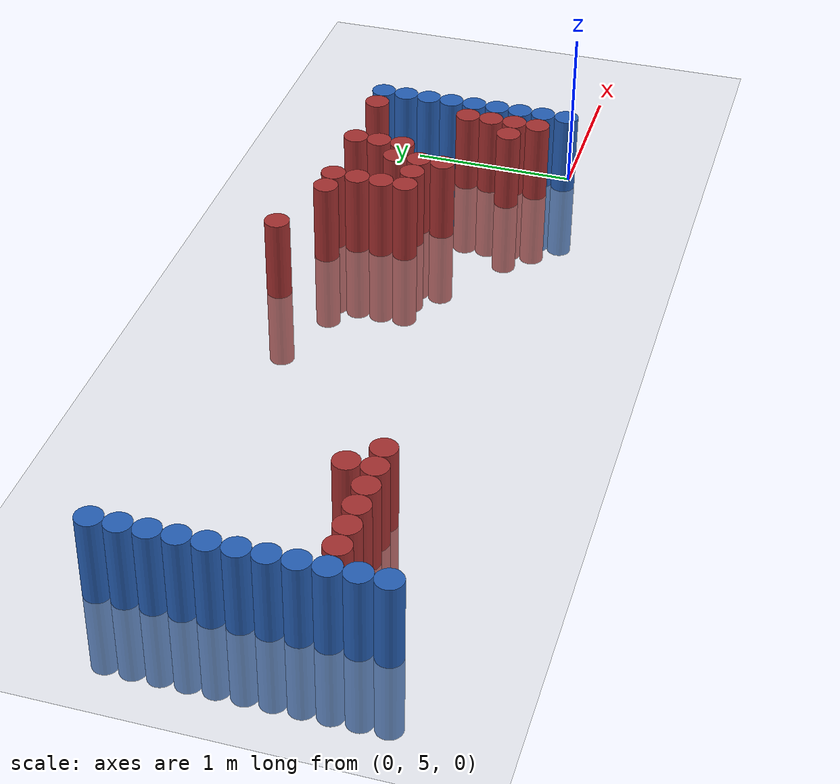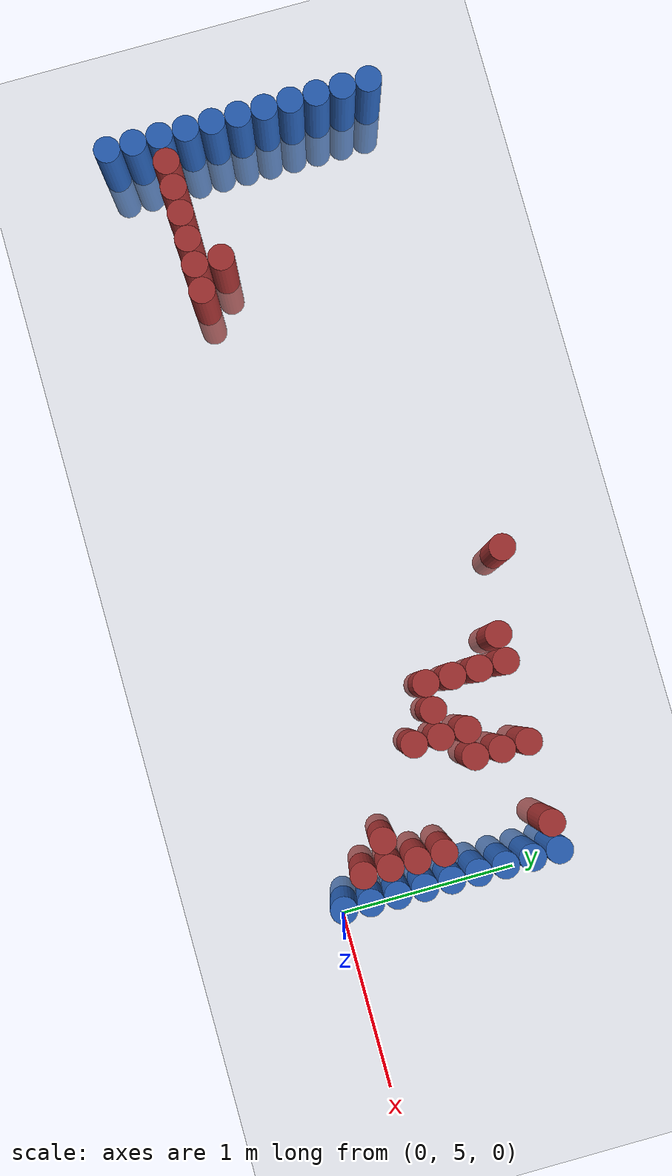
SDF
<sdf version="1.6">
 <world name="default">
  <model name="ground_plane">
   <static>1</static>
   <link name="link">
    <collision name="collision">
     <geometry><plane><normal>0 0 1</normal><size>100 100</size></plane></geometry>
     <surface><friction><ode><mu>100</mu><mu2>50</mu2></ode></friction></surface>
    </collision>
    <visual name="visual">
     <cast_shadows>0</cast_shadows>
     <geometry><plane><normal>0 0 1</normal><size>100 100</size></plane></geometry>
     <material>
      <script><uri>file://media/materials/scripts/gazebo.material</uri><name>Gazebo/Grey</name></script>
     </material>
    </visual>
   </link>
  </model>
  <model name="unit_cylinder_93">
   <static>1</static>
   <pose>-4.425000 4.875000 0.000000 0.000000 0.000000 0.000000</pose>
   <link name="link">
    <inertial>
     <mass>1</mass>
     <inertia><ixx>0.145833</ixx><ixy>0</ixy><ixz>0</ixz><iyy>0.145833</iyy><iyz>0</iyz><izz>0.125</izz></inertia>
    </inertial>
    <collision name="collision">
     <geometry><cylinder><radius>0.075000</radius><length>1</length></cylinder></geometry>
    </collision>
    <visual name="visual">
     <geometry><cylinder><radius>0.075000</radius><length>1</length></cylinder></geometry>
     <material>
      <ambient>0.152000 0.379000 0.720000 1</ambient>
      <diffuse>0.152000 0.379000 0.720000 1</diffuse>
     </material>
     <material>
      <script><name>Gazebo/Grey</name><uri>file://media/materials/scripts/gazebo.material</uri></script>
     </material>
    </visual>
   </link>
  </model>
  <model name="unit_cylinder_94">
   <static>1</static>
   <pose>-0.075000 5.025000 0.000000 0.000000 0.000000 0.000000</pose>
   <link name="link">
    <inertial>
     <mass>1</mass>
     <inertia><ixx>0.145833</ixx><ixy>0</ixy><ixz>0</ixz><iyy>0.145833</iyy><iyz>0</iyz><izz>0.125</izz></inertia>
    </inertial>
    <collision name="collision">
     <geometry><cylinder><radius>0.075000</radius><length>1</length></cylinder></geometry>
    </collision>
    <visual name="visual">
     <geometry><cylinder><radius>0.075000</radius><length>1</length></cylinder></geometry>
     <material>
      <ambient>0.152000 0.379000 0.720000 1</ambient>
      <diffuse>0.152000 0.379000 0.720000 1</diffuse>
     </material>
     <material>
      <script><name>Gazebo/Grey</name><uri>file://media/materials/scripts/gazebo.material</uri></script>
     </material>
    </visual>
   </link>
  </model>
  <model name="unit_cylinder_95">
   <static>1</static>
   <pose>-4.425000 5.025000 0.000000 0.000000 0.000000 0.000000</pose>
   <link name="link">
    <inertial>
     <mass>1</mass>
     <inertia><ixx>0.145833</ixx><ixy>0</ixy><ixz>0</ixz><iyy>0.145833</iyy><iyz>0</iyz><izz>0.125</izz></inertia>
    </inertial>
    <collision name="collision">
     <geometry><cylinder><radius>0.075000</radius><length>1</length></cylinder></geometry>
    </collision>
    <visual name="visual">
     <geometry><cylinder><radius>0.075000</radius><length>1</length></cylinder></geometry>
     <material>
      <ambient>0.152000 0.379000 0.720000 1</ambient>
      <diffuse>0.152000 0.379000 0.720000 1</diffuse>
     </material>
     <material>
      <script><name>Gazebo/Grey</name><uri>file://media/materials/scripts/gazebo.material</uri></script>
     </material>
    </visual>
   </link>
  </model>
  <model name="unit_cylinder_96">
   <static>1</static>
   <pose>-4.425000 5.175000 0.000000 0.000000 0.000000 0.000000</pose>
   <link name="link">
    <inertial>
     <mass>1</mass>
     <inertia><ixx>0.145833</ixx><ixy>0</ixy><ixz>0</ixz><iyy>0.145833</iyy><iyz>0</iyz><izz>0.125</izz></inertia>
    </inertial>
    <collision name="collision">
     <geometry><cylinder><radius>0.075000</radius><length>1</length></cylinder></geometry>
    </collision>
    <visual name="visual">
     <geometry><cylinder><radius>0.075000</radius><length>1</length></cylinder></geometry>
     <material>
      <ambient>0.152000 0.379000 0.720000 1</ambient>
      <diffuse>0.152000 0.379000 0.720000 1</diffuse>
     </material>
     <material>
      <script><name>Gazebo/Grey</name><uri>file://media/materials/scripts/gazebo.material</uri></script>
     </material>
    </visual>
   </link>
  </model>
  <model name="unit_cylinder_97">
   <static>1</static>
   <pose>-4.425000 5.325000 0.000000 0.000000 0.000000 0.000000</pose>
   <link name="link">
    <inertial>
     <mass>1</mass>
     <inertia><ixx>0.145833</ixx><ixy>0</ixy><ixz>0</ixz><iyy>0.145833</iyy><iyz>0</iyz><izz>0.125</izz></inertia>
    </inertial>
    <collision name="collision">
     <geometry><cylinder><radius>0.075000</radius><length>1</length></cylinder></geometry>
    </collision>
    <visual name="visual">
     <geometry><cylinder><radius>0.075000</radius><length>1</length></cylinder></geometry>
     <material>
      <ambient>0.152000 0.379000 0.720000 1</ambient>
      <diffuse>0.152000 0.379000 0.720000 1</diffuse>
     </material>
     <material>
      <script><name>Gazebo/Grey</name><uri>file://media/materials/scripts/gazebo.material</uri></script>
     </material>
    </visual>
   </link>
  </model>
  <model name="unit_cylinder_98">
   <static>1</static>
   <pose>-4.425000 5.475000 0.000000 0.000000 0.000000 0.000000</pose>
   <link name="link">
    <inertial>
     <mass>1</mass>
     <inertia><ixx>0.145833</ixx><ixy>0</ixy><ixz>0</ixz><iyy>0.145833</iyy><iyz>0</iyz><izz>0.125</izz></inertia>
    </inertial>
    <collision name="collision">
     <geometry><cylinder><radius>0.075000</radius><length>1</length></cylinder></geometry>
    </collision>
    <visual name="visual">
     <geometry><cylinder><radius>0.075000</radius><length>1</length></cylinder></geometry>
     <material>
      <ambient>0.152000 0.379000 0.720000 1</ambient>
      <diffuse>0.152000 0.379000 0.720000 1</diffuse>
     </material>
     <material>
      <script><name>Gazebo/Grey</name><uri>file://media/materials/scripts/gazebo.material</uri></script>
     </material>
    </visual>
   </link>
  </model>
  <model name="unit_cylinder_99">
   <static>1</static>
   <pose>-4.425000 5.625000 0.000000 0.000000 0.000000 0.000000</pose>
   <link name="link">
    <inertial>
     <mass>1</mass>
     <inertia><ixx>0.145833</ixx><ixy>0</ixy><ixz>0</ixz><iyy>0.145833</iyy><iyz>0</iyz><izz>0.125</izz></inertia>
    </inertial>
    <collision name="collision">
     <geometry><cylinder><radius>0.075000</radius><length>1</length></cylinder></geometry>
    </collision>
    <visual name="visual">
     <geometry><cylinder><radius>0.075000</radius><length>1</length></cylinder></geometry>
     <material>
      <ambient>0.152000 0.379000 0.720000 1</ambient>
      <diffuse>0.152000 0.379000 0.720000 1</diffuse>
     </material>
     <material>
      <script><name>Gazebo/Grey</name><uri>file://media/materials/scripts/gazebo.material</uri></script>
     </material>
    </visual>
   </link>
  </model>
  <model name="unit_cylinder_100">
   <static>1</static>
   <pose>-4.425000 5.775000 0.000000 0.000000 0.000000 0.000000</pose>
   <link name="link">
    <inertial>
     <mass>1</mass>
     <inertia><ixx>0.145833</ixx><ixy>0</ixy><ixz>0</ixz><iyy>0.145833</iyy><iyz>0</iyz><izz>0.125</izz></inertia>
    </inertial>
    <collision name="collision">
     <geometry><cylinder><radius>0.075000</radius><length>1</length></cylinder></geometry>
    </collision>
    <visual name="visual">
     <geometry><cylinder><radius>0.075000</radius><length>1</length></cylinder></geometry>
     <material>
      <ambient>0.152000 0.379000 0.720000 1</ambient>
      <diffuse>0.152000 0.379000 0.720000 1</diffuse>
     </material>
     <material>
      <script><name>Gazebo/Grey</name><uri>file://media/materials/scripts/gazebo.material</uri></script>
     </material>
    </visual>
   </link>
  </model>
  <model name="unit_cylinder_101">
   <static>1</static>
   <pose>-4.425000 5.925000 0.000000 0.000000 0.000000 0.000000</pose>
   <link name="link">
    <inertial>
     <mass>1</mass>
     <inertia><ixx>0.145833</ixx><ixy>0</ixy><ixz>0</ixz><iyy>0.145833</iyy><iyz>0</iyz><izz>0.125</izz></inertia>
    </inertial>
    <collision name="collision">
     <geometry><cylinder><radius>0.075000</radius><length>1</length></cylinder></geometry>
    </collision>
    <visual name="visual">
     <geometry><cylinder><radius>0.075000</radius><length>1</length></cylinder></geometry>
     <material>
      <ambient>0.152000 0.379000 0.720000 1</ambient>
      <diffuse>0.152000 0.379000 0.720000 1</diffuse>
     </material>
     <material>
      <script><name>Gazebo/Grey</name><uri>file://media/materials/scripts/gazebo.material</uri></script>
     </material>
    </visual>
   </link>
  </model>
  <model name="unit_cylinder_102">
   <static>1</static>
   <pose>-4.425000 6.075000 0.000000 0.000000 0.000000 0.000000</pose>
   <link name="link">
    <inertial>
     <mass>1</mass>
     <inertia><ixx>0.145833</ixx><ixy>0</ixy><ixz>0</ixz><iyy>0.145833</iyy><iyz>0</iyz><izz>0.125</izz></inertia>
    </inertial>
    <collision name="collision">
     <geometry><cylinder><radius>0.075000</radius><length>1</length></cylinder></geometry>
    </collision>
    <visual name="visual">
     <geometry><cylinder><radius>0.075000</radius><length>1</length></cylinder></geometry>
     <material>
      <ambient>0.152000 0.379000 0.720000 1</ambient>
      <diffuse>0.152000 0.379000 0.720000 1</diffuse>
     </material>
     <material>
      <script><name>Gazebo/Grey</name><uri>file://media/materials/scripts/gazebo.material</uri></script>
     </material>
    </visual>
   </link>
  </model>
  <model name="unit_cylinder_103">
   <static>1</static>
   <pose>-4.425000 6.225000 0.000000 0.000000 0.000000 0.000000</pose>
   <link name="link">
    <inertial>
     <mass>1</mass>
     <inertia><ixx>0.145833</ixx><ixy>0</ixy><ixz>0</ixz><iyy>0.145833</iyy><iyz>0</iyz><izz>0.125</izz></inertia>
    </inertial>
    <collision name="collision">
     <geometry><cylinder><radius>0.075000</radius><length>1</length></cylinder></geometry>
    </collision>
    <visual name="visual">
     <geometry><cylinder><radius>0.075000</radius><length>1</length></cylinder></geometry>
     <material>
      <ambient>0.152000 0.379000 0.720000 1</ambient>
      <diffuse>0.152000 0.379000 0.720000 1</diffuse>
     </material>
     <material>
      <script><name>Gazebo/Grey</name><uri>file://media/materials/scripts/gazebo.material</uri></script>
     </material>
    </visual>
   </link>
  </model>
  <model name="unit_cylinder_104">
   <static>1</static>
   <pose>-4.425000 6.375000 0.000000 0.000000 0.000000 0.000000</pose>
   <link name="link">
    <inertial>
     <mass>1</mass>
     <inertia><ixx>0.145833</ixx><ixy>0</ixy><ixz>0</ixz><iyy>0.145833</iyy><iyz>0</iyz><izz>0.125</izz></inertia>
    </inertial>
    <collision name="collision">
     <geometry><cylinder><radius>0.075000</radius><length>1</length></cylinder></geometry>
    </collision>
    <visual name="visual">
     <geometry><cylinder><radius>0.075000</radius><length>1</length></cylinder></geometry>
     <material>
      <ambient>0.152000 0.379000 0.720000 1</ambient>
      <diffuse>0.152000 0.379000 0.720000 1</diffuse>
     </material>
     <material>
      <script><name>Gazebo/Grey</name><uri>file://media/materials/scripts/gazebo.material</uri></script>
     </material>
    </visual>
   </link>
  </model>
  <model name="unit_cylinder_126">
   <static>1</static>
   <pose>-4.275000 5.175000 0.000000 0.000000 0.000000 0.000000</pose>
   <link name="link">
    <inertial>
     <mass>1</mass>
     <inertia><ixx>0.145833</ixx><ixy>0</ixy><ixz>0</ixz><iyy>0.145833</iyy><iyz>0</iyz><izz>0.125</izz></inertia>
    </inertial>
    <collision name="collision">
     <geometry><cylinder><radius>0.075000</radius><length>1</length></cylinder></geometry>
    </collision>
    <visual name="visual">
     <geometry><cylinder><radius>0.075000</radius><length>1</length></cylinder></geometry>
     <material>
      <ambient>0.648000 0.192000 0.192000 1</ambient>
      <diffuse>0.648000 0.192000 0.192000 1</diffuse>
     </material>
     <material>
      <script><name>Gazebo/Grey</name><uri>file://media/materials/scripts/gazebo.material</uri></script>
     </material>
    </visual>
   </link>
  </model>
  <model name="unit_cylinder_131">
   <static>1</static>
   <pose>-4.125000 5.175000 0.000000 0.000000 0.000000 0.000000</pose>
   <link name="link">
    <inertial>
     <mass>1</mass>
     <inertia><ixx>0.145833</ixx><ixy>0</ixy><ixz>0</ixz><iyy>0.145833</iyy><iyz>0</iyz><izz>0.125</izz></inertia>
    </inertial>
    <collision name="collision">
     <geometry><cylinder><radius>0.075000</radius><length>1</length></cylinder></geometry>
    </collision>
    <visual name="visual">
     <geometry><cylinder><radius>0.075000</radius><length>1</length></cylinder></geometry>
     <material>
      <ambient>0.648000 0.192000 0.192000 1</ambient>
      <diffuse>0.648000 0.192000 0.192000 1</diffuse>
     </material>
     <material>
      <script><name>Gazebo/Grey</name><uri>file://media/materials/scripts/gazebo.material</uri></script>
     </material>
    </visual>
   </link>
  </model>
  <model name="unit_cylinder_136">
   <static>1</static>
   <pose>-3.975000 5.175000 0.000000 0.000000 0.000000 0.000000</pose>
   <link name="link">
    <inertial>
     <mass>1</mass>
     <inertia><ixx>0.145833</ixx><ixy>0</ixy><ixz>0</ixz><iyy>0.145833</iyy><iyz>0</iyz><izz>0.125</izz></inertia>
    </inertial>
    <collision name="collision">
     <geometry><cylinder><radius>0.075000</radius><length>1</length></cylinder></geometry>
    </collision>
    <visual name="visual">
     <geometry><cylinder><radius>0.075000</radius><length>1</length></cylinder></geometry>
     <material>
      <ambient>0.648000 0.192000 0.192000 1</ambient>
      <diffuse>0.648000 0.192000 0.192000 1</diffuse>
     </material>
     <material>
      <script><name>Gazebo/Grey</name><uri>file://media/materials/scripts/gazebo.material</uri></script>
     </material>
    </visual>
   </link>
  </model>
  <model name="unit_cylinder_139">
   <static>1</static>
   <pose>-3.825000 5.175000 0.000000 0.000000 0.000000 0.000000</pose>
   <link name="link">
    <inertial>
     <mass>1</mass>
     <inertia><ixx>0.145833</ixx><ixy>0</ixy><ixz>0</ixz><iyy>0.145833</iyy><iyz>0</iyz><izz>0.125</izz></inertia>
    </inertial>
    <collision name="collision">
     <geometry><cylinder><radius>0.075000</radius><length>1</length></cylinder></geometry>
    </collision>
    <visual name="visual">
     <geometry><cylinder><radius>0.075000</radius><length>1</length></cylinder></geometry>
     <material>
      <ambient>0.648000 0.192000 0.192000 1</ambient>
      <diffuse>0.648000 0.192000 0.192000 1</diffuse>
     </material>
     <material>
      <script><name>Gazebo/Grey</name><uri>file://media/materials/scripts/gazebo.material</uri></script>
     </material>
    </visual>
   </link>
  </model>
  <model name="unit_cylinder_140">
   <static>1</static>
   <pose>-3.675000 5.175000 0.000000 0.000000 0.000000 0.000000</pose>
   <link name="link">
    <inertial>
     <mass>1</mass>
     <inertia><ixx>0.145833</ixx><ixy>0</ixy><ixz>0</ixz><iyy>0.145833</iyy><iyz>0</iyz><izz>0.125</izz></inertia>
    </inertial>
    <collision name="collision">
     <geometry><cylinder><radius>0.075000</radius><length>1</length></cylinder></geometry>
    </collision>
    <visual name="visual">
     <geometry><cylinder><radius>0.075000</radius><length>1</length></cylinder></geometry>
     <material>
      <ambient>0.648000 0.192000 0.192000 1</ambient>
      <diffuse>0.648000 0.192000 0.192000 1</diffuse>
     </material>
     <material>
      <script><name>Gazebo/Grey</name><uri>file://media/materials/scripts/gazebo.material</uri></script>
     </material>
    </visual>
   </link>
  </model>
  <model name="unit_cylinder_141">
   <static>1</static>
   <pose>-3.675000 5.325000 0.000000 0.000000 0.000000 0.000000</pose>
   <link name="link">
    <inertial>
     <mass>1</mass>
     <inertia><ixx>0.145833</ixx><ixy>0</ixy><ixz>0</ixz><iyy>0.145833</iyy><iyz>0</iyz><izz>0.125</izz></inertia>
    </inertial>
    <collision name="collision">
     <geometry><cylinder><radius>0.075000</radius><length>1</length></cylinder></geometry>
    </collision>
    <visual name="visual">
     <geometry><cylinder><radius>0.075000</radius><length>1</length></cylinder></geometry>
     <material>
      <ambient>0.648000 0.192000 0.192000 1</ambient>
      <diffuse>0.648000 0.192000 0.192000 1</diffuse>
     </material>
     <material>
      <script><name>Gazebo/Grey</name><uri>file://media/materials/scripts/gazebo.material</uri></script>
     </material>
    </visual>
   </link>
  </model>
  <model name="unit_cylinder_142">
   <static>1</static>
   <pose>-3.525000 5.175000 0.000000 0.000000 0.000000 0.000000</pose>
   <link name="link">
    <inertial>
     <mass>1</mass>
     <inertia><ixx>0.145833</ixx><ixy>0</ixy><ixz>0</ixz><iyy>0.145833</iyy><iyz>0</iyz><izz>0.125</izz></inertia>
    </inertial>
    <collision name="collision">
     <geometry><cylinder><radius>0.075000</radius><length>1</length></cylinder></geometry>
    </collision>
    <visual name="visual">
     <geometry><cylinder><radius>0.075000</radius><length>1</length></cylinder></geometry>
     <material>
      <ambient>0.648000 0.192000 0.192000 1</ambient>
      <diffuse>0.648000 0.192000 0.192000 1</diffuse>
     </material>
     <material>
      <script><name>Gazebo/Grey</name><uri>file://media/materials/scripts/gazebo.material</uri></script>
     </material>
    </visual>
   </link>
  </model>
  <model name="unit_cylinder_179">
   <static>1</static>
   <pose>-1.725000 6.375000 0.000000 0.000000 0.000000 0.000000</pose>
   <link name="link">
    <inertial>
     <mass>1</mass>
     <inertia><ixx>0.145833</ixx><ixy>0</ixy><ixz>0</ixz><iyy>0.145833</iyy><iyz>0</iyz><izz>0.125</izz></inertia>
    </inertial>
    <collision name="collision">
     <geometry><cylinder><radius>0.075000</radius><length>1</length></cylinder></geometry>
    </collision>
    <visual name="visual">
     <geometry><cylinder><radius>0.075000</radius><length>1</length></cylinder></geometry>
     <material>
      <ambient>0.648000 0.192000 0.192000 1</ambient>
      <diffuse>0.648000 0.192000 0.192000 1</diffuse>
     </material>
     <material>
      <script><name>Gazebo/Grey</name><uri>file://media/materials/scripts/gazebo.material</uri></script>
     </material>
    </visual>
   </link>
  </model>
  <model name="unit_cylinder_195">
   <static>1</static>
   <pose>-1.275000 6.225000 0.000000 0.000000 0.000000 0.000000</pose>
   <link name="link">
    <inertial>
     <mass>1</mass>
     <inertia><ixx>0.145833</ixx><ixy>0</ixy><ixz>0</ixz><iyy>0.145833</iyy><iyz>0</iyz><izz>0.125</izz></inertia>
    </inertial>
    <collision name="collision">
     <geometry><cylinder><radius>0.075000</radius><length>1</length></cylinder></geometry>
    </collision>
    <visual name="visual">
     <geometry><cylinder><radius>0.075000</radius><length>1</length></cylinder></geometry>
     <material>
      <ambient>0.648000 0.192000 0.192000 1</ambient>
      <diffuse>0.648000 0.192000 0.192000 1</diffuse>
     </material>
     <material>
      <script><name>Gazebo/Grey</name><uri>file://media/materials/scripts/gazebo.material</uri></script>
     </material>
    </visual>
   </link>
  </model>
  <model name="unit_cylinder_204">
   <static>1</static>
   <pose>-1.125000 5.775000 0.000000 0.000000 0.000000 0.000000</pose>
   <link name="link">
    <inertial>
     <mass>1</mass>
     <inertia><ixx>0.145833</ixx><ixy>0</ixy><ixz>0</ixz><iyy>0.145833</iyy><iyz>0</iyz><izz>0.125</izz></inertia>
    </inertial>
    <collision name="collision">
     <geometry><cylinder><radius>0.075000</radius><length>1</length></cylinder></geometry>
    </collision>
    <visual name="visual">
     <geometry><cylinder><radius>0.075000</radius><length>1</length></cylinder></geometry>
     <material>
      <ambient>0.648000 0.192000 0.192000 1</ambient>
      <diffuse>0.648000 0.192000 0.192000 1</diffuse>
     </material>
     <material>
      <script><name>Gazebo/Grey</name><uri>file://media/materials/scripts/gazebo.material</uri></script>
     </material>
    </visual>
   </link>
  </model>
  <model name="unit_cylinder_205">
   <static>1</static>
   <pose>-1.125000 5.925000 0.000000 0.000000 0.000000 0.000000</pose>
   <link name="link">
    <inertial>
     <mass>1</mass>
     <inertia><ixx>0.145833</ixx><ixy>0</ixy><ixz>0</ixz><iyy>0.145833</iyy><iyz>0</iyz><izz>0.125</izz></inertia>
    </inertial>
    <collision name="collision">
     <geometry><cylinder><radius>0.075000</radius><length>1</length></cylinder></geometry>
    </collision>
    <visual name="visual">
     <geometry><cylinder><radius>0.075000</radius><length>1</length></cylinder></geometry>
     <material>
      <ambient>0.648000 0.192000 0.192000 1</ambient>
      <diffuse>0.648000 0.192000 0.192000 1</diffuse>
     </material>
     <material>
      <script><name>Gazebo/Grey</name><uri>file://media/materials/scripts/gazebo.material</uri></script>
     </material>
    </visual>
   </link>
  </model>
  <model name="unit_cylinder_206">
   <static>1</static>
   <pose>-1.125000 6.075000 0.000000 0.000000 0.000000 0.000000</pose>
   <link name="link">
    <inertial>
     <mass>1</mass>
     <inertia><ixx>0.145833</ixx><ixy>0</ixy><ixz>0</ixz><iyy>0.145833</iyy><iyz>0</iyz><izz>0.125</izz></inertia>
    </inertial>
    <collision name="collision">
     <geometry><cylinder><radius>0.075000</radius><length>1</length></cylinder></geometry>
    </collision>
    <visual name="visual">
     <geometry><cylinder><radius>0.075000</radius><length>1</length></cylinder></geometry>
     <material>
      <ambient>0.648000 0.192000 0.192000 1</ambient>
      <diffuse>0.648000 0.192000 0.192000 1</diffuse>
     </material>
     <material>
      <script><name>Gazebo/Grey</name><uri>file://media/materials/scripts/gazebo.material</uri></script>
     </material>
    </visual>
   </link>
  </model>
  <model name="unit_cylinder_207">
   <static>1</static>
   <pose>-1.125000 6.225000 0.000000 0.000000 0.000000 0.000000</pose>
   <link name="link">
    <inertial>
     <mass>1</mass>
     <inertia><ixx>0.145833</ixx><ixy>0</ixy><ixz>0</ixz><iyy>0.145833</iyy><iyz>0</iyz><izz>0.125</izz></inertia>
    </inertial>
    <collision name="collision">
     <geometry><cylinder><radius>0.075000</radius><length>1</length></cylinder></geometry>
    </collision>
    <visual name="visual">
     <geometry><cylinder><radius>0.075000</radius><length>1</length></cylinder></geometry>
     <material>
      <ambient>0.648000 0.192000 0.192000 1</ambient>
      <diffuse>0.648000 0.192000 0.192000 1</diffuse>
     </material>
     <material>
      <script><name>Gazebo/Grey</name><uri>file://media/materials/scripts/gazebo.material</uri></script>
     </material>
    </visual>
   </link>
  </model>
  <model name="unit_cylinder_214">
   <static>1</static>
   <pose>-0.975000 5.775000 0.000000 0.000000 0.000000 0.000000</pose>
   <link name="link">
    <inertial>
     <mass>1</mass>
     <inertia><ixx>0.145833</ixx><ixy>0</ixy><ixz>0</ixz><iyy>0.145833</iyy><iyz>0</iyz><izz>0.125</izz></inertia>
    </inertial>
    <collision name="collision">
     <geometry><cylinder><radius>0.075000</radius><length>1</length></cylinder></geometry>
    </collision>
    <visual name="visual">
     <geometry><cylinder><radius>0.075000</radius><length>1</length></cylinder></geometry>
     <material>
      <ambient>0.648000 0.192000 0.192000 1</ambient>
      <diffuse>0.648000 0.192000 0.192000 1</diffuse>
     </material>
     <material>
      <script><name>Gazebo/Grey</name><uri>file://media/materials/scripts/gazebo.material</uri></script>
     </material>
    </visual>
   </link>
  </model>
  <model name="unit_cylinder_217">
   <static>1</static>
   <pose>-0.825000 5.625000 0.000000 0.000000 0.000000 0.000000</pose>
   <link name="link">
    <inertial>
     <mass>1</mass>
     <inertia><ixx>0.145833</ixx><ixy>0</ixy><ixz>0</ixz><iyy>0.145833</iyy><iyz>0</iyz><izz>0.125</izz></inertia>
    </inertial>
    <collision name="collision">
     <geometry><cylinder><radius>0.075000</radius><length>1</length></cylinder></geometry>
    </collision>
    <visual name="visual">
     <geometry><cylinder><radius>0.075000</radius><length>1</length></cylinder></geometry>
     <material>
      <ambient>0.648000 0.192000 0.192000 1</ambient>
      <diffuse>0.648000 0.192000 0.192000 1</diffuse>
     </material>
     <material>
      <script><name>Gazebo/Grey</name><uri>file://media/materials/scripts/gazebo.material</uri></script>
     </material>
    </visual>
   </link>
  </model>
  <model name="unit_cylinder_218">
   <static>1</static>
   <pose>-0.825000 5.775000 0.000000 0.000000 0.000000 0.000000</pose>
   <link name="link">
    <inertial>
     <mass>1</mass>
     <inertia><ixx>0.145833</ixx><ixy>0</ixy><ixz>0</ixz><iyy>0.145833</iyy><iyz>0</iyz><izz>0.125</izz></inertia>
    </inertial>
    <collision name="collision">
     <geometry><cylinder><radius>0.075000</radius><length>1</length></cylinder></geometry>
    </collision>
    <visual name="visual">
     <geometry><cylinder><radius>0.075000</radius><length>1</length></cylinder></geometry>
     <material>
      <ambient>0.648000 0.192000 0.192000 1</ambient>
      <diffuse>0.648000 0.192000 0.192000 1</diffuse>
     </material>
     <material>
      <script><name>Gazebo/Grey</name><uri>file://media/materials/scripts/gazebo.material</uri></script>
     </material>
    </visual>
   </link>
  </model>
  <model name="unit_cylinder_219">
   <static>1</static>
   <pose>-0.825000 5.925000 0.000000 0.000000 0.000000 0.000000</pose>
   <link name="link">
    <inertial>
     <mass>1</mass>
     <inertia><ixx>0.145833</ixx><ixy>0</ixy><ixz>0</ixz><iyy>0.145833</iyy><iyz>0</iyz><izz>0.125</izz></inertia>
    </inertial>
    <collision name="collision">
     <geometry><cylinder><radius>0.075000</radius><length>1</length></cylinder></geometry>
    </collision>
    <visual name="visual">
     <geometry><cylinder><radius>0.075000</radius><length>1</length></cylinder></geometry>
     <material>
      <ambient>0.648000 0.192000 0.192000 1</ambient>
      <diffuse>0.648000 0.192000 0.192000 1</diffuse>
     </material>
     <material>
      <script><name>Gazebo/Grey</name><uri>file://media/materials/scripts/gazebo.material</uri></script>
     </material>
    </visual>
   </link>
  </model>
  <model name="unit_cylinder_221">
   <static>1</static>
   <pose>-0.675000 5.925000 0.000000 0.000000 0.000000 0.000000</pose>
   <link name="link">
    <inertial>
     <mass>1</mass>
     <inertia><ixx>0.145833</ixx><ixy>0</ixy><ixz>0</ixz><iyy>0.145833</iyy><iyz>0</iyz><izz>0.125</izz></inertia>
    </inertial>
    <collision name="collision">
     <geometry><cylinder><radius>0.075000</radius><length>1</length></cylinder></geometry>
    </collision>
    <visual name="visual">
     <geometry><cylinder><radius>0.075000</radius><length>1</length></cylinder></geometry>
     <material>
      <ambient>0.648000 0.192000 0.192000 1</ambient>
      <diffuse>0.648000 0.192000 0.192000 1</diffuse>
     </material>
     <material>
      <script><name>Gazebo/Grey</name><uri>file://media/materials/scripts/gazebo.material</uri></script>
     </material>
    </visual>
   </link>
  </model>
  <model name="unit_cylinder_222">
   <static>1</static>
   <pose>-0.675000 6.075000 0.000000 0.000000 0.000000 0.000000</pose>
   <link name="link">
    <inertial>
     <mass>1</mass>
     <inertia><ixx>0.145833</ixx><ixy>0</ixy><ixz>0</ixz><iyy>0.145833</iyy><iyz>0</iyz><izz>0.125</izz></inertia>
    </inertial>
    <collision name="collision">
     <geometry><cylinder><radius>0.075000</radius><length>1</length></cylinder></geometry>
    </collision>
    <visual name="visual">
     <geometry><cylinder><radius>0.075000</radius><length>1</length></cylinder></geometry>
     <material>
      <ambient>0.648000 0.192000 0.192000 1</ambient>
      <diffuse>0.648000 0.192000 0.192000 1</diffuse>
     </material>
     <material>
      <script><name>Gazebo/Grey</name><uri>file://media/materials/scripts/gazebo.material</uri></script>
     </material>
    </visual>
   </link>
  </model>
  <model name="unit_cylinder_223">
   <static>1</static>
   <pose>-0.675000 6.225000 0.000000 0.000000 0.000000 0.000000</pose>
   <link name="link">
    <inertial>
     <mass>1</mass>
     <inertia><ixx>0.145833</ixx><ixy>0</ixy><ixz>0</ixz><iyy>0.145833</iyy><iyz>0</iyz><izz>0.125</izz></inertia>
    </inertial>
    <collision name="collision">
     <geometry><cylinder><radius>0.075000</radius><length>1</length></cylinder></geometry>
    </collision>
    <visual name="visual">
     <geometry><cylinder><radius>0.075000</radius><length>1</length></cylinder></geometry>
     <material>
      <ambient>0.648000 0.192000 0.192000 1</ambient>
      <diffuse>0.648000 0.192000 0.192000 1</diffuse>
     </material>
     <material>
      <script><name>Gazebo/Grey</name><uri>file://media/materials/scripts/gazebo.material</uri></script>
     </material>
    </visual>
   </link>
  </model>
  <model name="unit_cylinder_232">
   <static>1</static>
   <pose>-0.375000 5.325000 0.000000 0.000000 0.000000 0.000000</pose>
   <link name="link">
    <inertial>
     <mass>1</mass>
     <inertia><ixx>0.145833</ixx><ixy>0</ixy><ixz>0</ixz><iyy>0.145833</iyy><iyz>0</iyz><izz>0.125</izz></inertia>
    </inertial>
    <collision name="collision">
     <geometry><cylinder><radius>0.075000</radius><length>1</length></cylinder></geometry>
    </collision>
    <visual name="visual">
     <geometry><cylinder><radius>0.075000</radius><length>1</length></cylinder></geometry>
     <material>
      <ambient>0.648000 0.192000 0.192000 1</ambient>
      <diffuse>0.648000 0.192000 0.192000 1</diffuse>
     </material>
     <material>
      <script><name>Gazebo/Grey</name><uri>file://media/materials/scripts/gazebo.material</uri></script>
     </material>
    </visual>
   </link>
  </model>
  <model name="unit_cylinder_238">
   <static>1</static>
   <pose>-0.225000 5.175000 0.000000 0.000000 0.000000 0.000000</pose>
   <link name="link">
    <inertial>
     <mass>1</mass>
     <inertia><ixx>0.145833</ixx><ixy>0</ixy><ixz>0</ixz><iyy>0.145833</iyy><iyz>0</iyz><izz>0.125</izz></inertia>
    </inertial>
    <collision name="collision">
     <geometry><cylinder><radius>0.075000</radius><length>1</length></cylinder></geometry>
    </collision>
    <visual name="visual">
     <geometry><cylinder><radius>0.075000</radius><length>1</length></cylinder></geometry>
     <material>
      <ambient>0.648000 0.192000 0.192000 1</ambient>
      <diffuse>0.648000 0.192000 0.192000 1</diffuse>
     </material>
     <material>
      <script><name>Gazebo/Grey</name><uri>file://media/materials/scripts/gazebo.material</uri></script>
     </material>
    </visual>
   </link>
  </model>
  <model name="unit_cylinder_239">
   <static>1</static>
   <pose>-0.225000 5.325000 0.000000 0.000000 0.000000 0.000000</pose>
   <link name="link">
    <inertial>
     <mass>1</mass>
     <inertia><ixx>0.145833</ixx><ixy>0</ixy><ixz>0</ixz><iyy>0.145833</iyy><iyz>0</iyz><izz>0.125</izz></inertia>
    </inertial>
    <collision name="collision">
     <geometry><cylinder><radius>0.075000</radius><length>1</length></cylinder></geometry>
    </collision>
    <visual name="visual">
     <geometry><cylinder><radius>0.075000</radius><length>1</length></cylinder></geometry>
     <material>
      <ambient>0.648000 0.192000 0.192000 1</ambient>
      <diffuse>0.648000 0.192000 0.192000 1</diffuse>
     </material>
     <material>
      <script><name>Gazebo/Grey</name><uri>file://media/materials/scripts/gazebo.material</uri></script>
     </material>
    </visual>
   </link>
  </model>
  <model name="unit_cylinder_240">
   <static>1</static>
   <pose>-0.225000 5.475000 0.000000 0.000000 0.000000 0.000000</pose>
   <link name="link">
    <inertial>
     <mass>1</mass>
     <inertia><ixx>0.145833</ixx><ixy>0</ixy><ixz>0</ixz><iyy>0.145833</iyy><iyz>0</iyz><izz>0.125</izz></inertia>
    </inertial>
    <collision name="collision">
     <geometry><cylinder><radius>0.075000</radius><length>1</length></cylinder></geometry>
    </collision>
    <visual name="visual">
     <geometry><cylinder><radius>0.075000</radius><length>1</length></cylinder></geometry>
     <material>
      <ambient>0.648000 0.192000 0.192000 1</ambient>
      <diffuse>0.648000 0.192000 0.192000 1</diffuse>
     </material>
     <material>
      <script><name>Gazebo/Grey</name><uri>file://media/materials/scripts/gazebo.material</uri></script>
     </material>
    </visual>
   </link>
  </model>
  <model name="unit_cylinder_241">
   <static>1</static>
   <pose>-0.225000 5.625000 0.000000 0.000000 0.000000 0.000000</pose>
   <link name="link">
    <inertial>
     <mass>1</mass>
     <inertia><ixx>0.145833</ixx><ixy>0</ixy><ixz>0</ixz><iyy>0.145833</iyy><iyz>0</iyz><izz>0.125</izz></inertia>
    </inertial>
    <collision name="collision">
     <geometry><cylinder><radius>0.075000</radius><length>1</length></cylinder></geometry>
    </collision>
    <visual name="visual">
     <geometry><cylinder><radius>0.075000</radius><length>1</length></cylinder></geometry>
     <material>
      <ambient>0.648000 0.192000 0.192000 1</ambient>
      <diffuse>0.648000 0.192000 0.192000 1</diffuse>
     </material>
     <material>
      <script><name>Gazebo/Grey</name><uri>file://media/materials/scripts/gazebo.material</uri></script>
     </material>
    </visual>
   </link>
  </model>
  <model name="unit_cylinder_242">
   <static>1</static>
   <pose>-0.225000 6.225000 0.000000 0.000000 0.000000 0.000000</pose>
   <link name="link">
    <inertial>
     <mass>1</mass>
     <inertia><ixx>0.145833</ixx><ixy>0</ixy><ixz>0</ixz><iyy>0.145833</iyy><iyz>0</iyz><izz>0.125</izz></inertia>
    </inertial>
    <collision name="collision">
     <geometry><cylinder><radius>0.075000</radius><length>1</length></cylinder></geometry>
    </collision>
    <visual name="visual">
     <geometry><cylinder><radius>0.075000</radius><length>1</length></cylinder></geometry>
     <material>
      <ambient>0.648000 0.192000 0.192000 1</ambient>
      <diffuse>0.648000 0.192000 0.192000 1</diffuse>
     </material>
     <material>
      <script><name>Gazebo/Grey</name><uri>file://media/materials/scripts/gazebo.material</uri></script>
     </material>
    </visual>
   </link>
  </model>
  <model name="unit_cylinder_248">
   <static>1</static>
   <pose>-0.075000 5.175000 0.000000 0.000000 0.000000 0.000000</pose>
   <link name="link">
    <inertial>
     <mass>1</mass>
     <inertia><ixx>0.145833</ixx><ixy>0</ixy><ixz>0</ixz><iyy>0.145833</iyy><iyz>0</iyz><izz>0.125</izz></inertia>
    </inertial>
    <collision name="collision">
     <geometry><cylinder><radius>0.075000</radius><length>1</length></cylinder></geometry>
    </collision>
    <visual name="visual">
     <geometry><cylinder><radius>0.075000</radius><length>1</length></cylinder></geometry>
     <material>
      <ambient>0.152000 0.379000 0.720000 1</ambient>
      <diffuse>0.152000 0.379000 0.720000 1</diffuse>
     </material>
     <material>
      <script><name>Gazebo/Grey</name><uri>file://media/materials/scripts/gazebo.material</uri></script>
     </material>
    </visual>
   </link>
  </model>
  <model name="unit_cylinder_249">
   <static>1</static>
   <pose>-0.075000 5.325000 0.000000 0.000000 0.000000 0.000000</pose>
   <link name="link">
    <inertial>
     <mass>1</mass>
     <inertia><ixx>0.145833</ixx><ixy>0</ixy><ixz>0</ixz><iyy>0.145833</iyy><iyz>0</iyz><izz>0.125</izz></inertia>
    </inertial>
    <collision name="collision">
     <geometry><cylinder><radius>0.075000</radius><length>1</length></cylinder></geometry>
    </collision>
    <visual name="visual">
     <geometry><cylinder><radius>0.075000</radius><length>1</length></cylinder></geometry>
     <material>
      <ambient>0.152000 0.379000 0.720000 1</ambient>
      <diffuse>0.152000 0.379000 0.720000 1</diffuse>
     </material>
     <material>
      <script><name>Gazebo/Grey</name><uri>file://media/materials/scripts/gazebo.material</uri></script>
     </material>
    </visual>
   </link>
  </model>
  <model name="unit_cylinder_250">
   <static>1</static>
   <pose>-0.075000 5.475000 0.000000 0.000000 0.000000 0.000000</pose>
   <link name="link">
    <inertial>
     <mass>1</mass>
     <inertia><ixx>0.145833</ixx><ixy>0</ixy><ixz>0</ixz><iyy>0.145833</iyy><iyz>0</iyz><izz>0.125</izz></inertia>
    </inertial>
    <collision name="collision">
     <geometry><cylinder><radius>0.075000</radius><length>1</length></cylinder></geometry>
    </collision>
    <visual name="visual">
     <geometry><cylinder><radius>0.075000</radius><length>1</length></cylinder></geometry>
     <material>
      <ambient>0.152000 0.379000 0.720000 1</ambient>
      <diffuse>0.152000 0.379000 0.720000 1</diffuse>
     </material>
     <material>
      <script><name>Gazebo/Grey</name><uri>file://media/materials/scripts/gazebo.material</uri></script>
     </material>
    </visual>
   </link>
  </model>
  <model name="unit_cylinder_251">
   <static>1</static>
   <pose>-0.075000 5.625000 0.000000 0.000000 0.000000 0.000000</pose>
   <link name="link">
    <inertial>
     <mass>1</mass>
     <inertia><ixx>0.145833</ixx><ixy>0</ixy><ixz>0</ixz><iyy>0.145833</iyy><iyz>0</iyz><izz>0.125</izz></inertia>
    </inertial>
    <collision name="collision">
     <geometry><cylinder><radius>0.075000</radius><length>1</length></cylinder></geometry>
    </collision>
    <visual name="visual">
     <geometry><cylinder><radius>0.075000</radius><length>1</length></cylinder></geometry>
     <material>
      <ambient>0.152000 0.379000 0.720000 1</ambient>
      <diffuse>0.152000 0.379000 0.720000 1</diffuse>
     </material>
     <material>
      <script><name>Gazebo/Grey</name><uri>file://media/materials/scripts/gazebo.material</uri></script>
     </material>
    </visual>
   </link>
  </model>
  <model name="unit_cylinder_252">
   <static>1</static>
   <pose>-0.075000 5.775000 0.000000 0.000000 0.000000 0.000000</pose>
   <link name="link">
    <inertial>
     <mass>1</mass>
     <inertia><ixx>0.145833</ixx><ixy>0</ixy><ixz>0</ixz><iyy>0.145833</iyy><iyz>0</iyz><izz>0.125</izz></inertia>
    </inertial>
    <collision name="collision">
     <geometry><cylinder><radius>0.075000</radius><length>1</length></cylinder></geometry>
    </collision>
    <visual name="visual">
     <geometry><cylinder><radius>0.075000</radius><length>1</length></cylinder></geometry>
     <material>
      <ambient>0.152000 0.379000 0.720000 1</ambient>
      <diffuse>0.152000 0.379000 0.720000 1</diffuse>
     </material>
     <material>
      <script><name>Gazebo/Grey</name><uri>file://media/materials/scripts/gazebo.material</uri></script>
     </material>
    </visual>
   </link>
  </model>
  <model name="unit_cylinder_253">
   <static>1</static>
   <pose>-0.075000 5.925000 0.000000 0.000000 0.000000 0.000000</pose>
   <link name="link">
    <inertial>
     <mass>1</mass>
     <inertia><ixx>0.145833</ixx><ixy>0</ixy><ixz>0</ixz><iyy>0.145833</iyy><iyz>0</iyz><izz>0.125</izz></inertia>
    </inertial>
    <collision name="collision">
     <geometry><cylinder><radius>0.075000</radius><length>1</length></cylinder></geometry>
    </collision>
    <visual name="visual">
     <geometry><cylinder><radius>0.075000</radius><length>1</length></cylinder></geometry>
     <material>
      <ambient>0.152000 0.379000 0.720000 1</ambient>
      <diffuse>0.152000 0.379000 0.720000 1</diffuse>
     </material>
     <material>
      <script><name>Gazebo/Grey</name><uri>file://media/materials/scripts/gazebo.material</uri></script>
     </material>
    </visual>
   </link>
  </model>
  <model name="unit_cylinder_254">
   <static>1</static>
   <pose>-0.075000 6.075000 0.000000 0.000000 0.000000 0.000000</pose>
   <link name="link">
    <inertial>
     <mass>1</mass>
     <inertia><ixx>0.145833</ixx><ixy>0</ixy><ixz>0</ixz><iyy>0.145833</iyy><iyz>0</iyz><izz>0.125</izz></inertia>
    </inertial>
    <collision name="collision">
     <geometry><cylinder><radius>0.075000</radius><length>1</length></cylinder></geometry>
    </collision>
    <visual name="visual">
     <geometry><cylinder><radius>0.075000</radius><length>1</length></cylinder></geometry>
     <material>
      <ambient>0.152000 0.379000 0.720000 1</ambient>
      <diffuse>0.152000 0.379000 0.720000 1</diffuse>
     </material>
     <material>
      <script><name>Gazebo/Grey</name><uri>file://media/materials/scripts/gazebo.material</uri></script>
     </material>
    </visual>
   </link>
  </model>
  <model name="unit_cylinder_255">
   <static>1</static>
   <pose>-0.075000 6.225000 0.000000 0.000000 0.000000 0.000000</pose>
   <link name="link">
    <inertial>
     <mass>1</mass>
     <inertia><ixx>0.145833</ixx><ixy>0</ixy><ixz>0</ixz><iyy>0.145833</iyy><iyz>0</iyz><izz>0.125</izz></inertia>
    </inertial>
    <collision name="collision">
     <geometry><cylinder><radius>0.075000</radius><length>1</length></cylinder></geometry>
    </collision>
    <visual name="visual">
     <geometry><cylinder><radius>0.075000</radius><length>1</length></cylinder></geometry>
     <material>
      <ambient>0.152000 0.379000 0.720000 1</ambient>
      <diffuse>0.152000 0.379000 0.720000 1</diffuse>
     </material>
     <material>
      <script><name>Gazebo/Grey</name><uri>file://media/materials/scripts/gazebo.material</uri></script>
     </material>
    </visual>
   </link>
  </model>
 </world>
</sdf>
